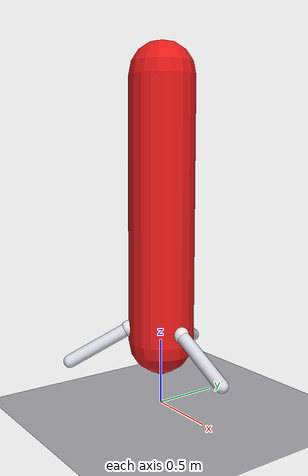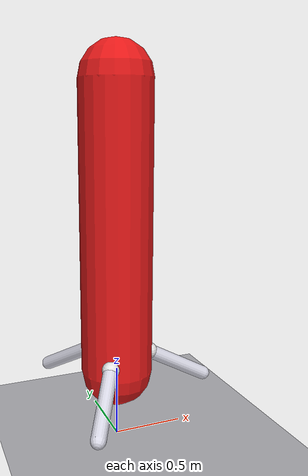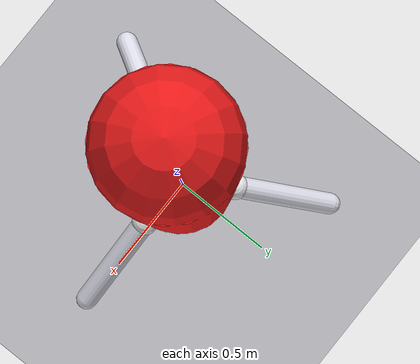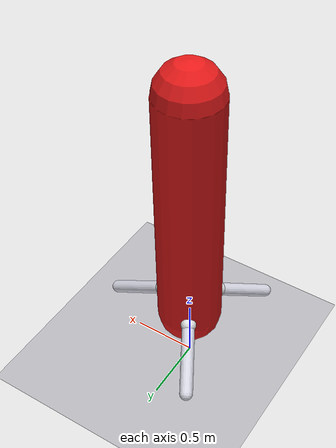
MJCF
<mujoco model="tintin_rocket">
  <compiler angle="degree" coordinate="local"/>
  <option timestep="0.002" gravity="0 0 -9.81" integrator="RK4"/>

  <visual>
    <map znear="0.001" zfar="200"/>
    <quality shadowsize="4096"/>
    <headlight ambient="0.3 0.3 0.3" diffuse="0.7 0.7 0.7"/>
  </visual>

  <default>
    <!-- General contact feel -->
    <geom friction="1.0 0.1 0.01" contype="1" conaffinity="1"/>
    <!-- Stiff & well-damped hinges for gimbal -->
    <joint limited="true" range="-90 90" damping="5.0" armature="0.0005"/>
    <!-- Visuals -->
    <site size="0.02" rgba="0.1 0.7 1 1"/>
  </default>

  <worldbody>
    <!-- Ground -->
    <geom name="ground" type="plane" size="50 50 1" pos="0 0 0" rgba="0.7 0.7 0.72 1"/>

    <!-- ===================== ROCKET BODY ===================== -->
    <!-- Main body height ~2.0 m, radius ~0.25 m; base at z=0.25 so legs touch ground -->
    <body name="rocket" pos="0 0 0.25">
      <!-- Smooth body as a vertical capsule along +Z -->
      <geom name="hull" type="capsule" fromto="0 0 0.25  0 0 2.25" size="0.25" rgba="0.9 0.1 0.1 1" density="600"/>

      <!-- ===================== LANDING LEGS (3x, fixed) ===================== -->
      <!-- Simple splayed capsules; tips are near z=0 -->
      <!-- Leg length ~0.6 m, thickness ~0.05 m, splay angle ~25 deg -->
      <!-- Leg A (0 deg) -->
      <geom name="legA_root" type="sphere" size="0.06" pos="0.25 0 0.35" rgba="0.9 0.9 0.9 1"/>
      <geom name="legA" type="capsule"
            fromto="0.25 0 0.35   0.70 0 0.10"
            size="0.05" rgba="0.85 0.85 0.9 1" density="500"/>
      <!-- Leg B (120 deg) -->
      <geom name="legB_root" type="sphere" size="0.06" pos="-0.125 0.2165 0.35" rgba="0.9 0.9 0.9 1"/>
      <geom name="legB" type="capsule"
            fromto="-0.125 0.2165 0.35   -0.35 0.6062 0.10"
            size="0.05" rgba="0.85 0.85 0.9 1" density="500"/>
      <!-- Leg C (240 deg) -->
      <geom name="legC_root" type="sphere" size="0.06" pos="-0.125 -0.2165 0.35" rgba="0.9 0.9 0.9 1"/>
      <geom name="legC" type="capsule"
            fromto="-0.125 -0.2165 0.35   -0.35 -0.6062 0.10"
            size="0.05" rgba="0.85 0.85 0.9 1" density="500"/>

      <!-- ===================== GIMBALED ENGINE ===================== -->
      <!-- Roll hinge (X), then Pitch hinge (Y); nozzle points along +Z(nozzle) -->
      <body name="gimbal_roll" pos="0 0 0.30">
        <joint name="gim_roll" type="hinge" axis="1 0 0" range="-15 15"/>

        <body name="gimbal_pitch" pos="0 0 0">
          <joint name="gim_pitch" type="hinge" axis="0 1 0" range="-15 15"/>

          <!-- Nozzle body & visuals (short capsule); +Z is thrust direction -->
          <body name="nozzle" pos="0 0 0">
            <geom name="nozzle_geom" type="capsule" fromto="0 0 0   0 0 -0.25"
                  size="0.07" rgba="0.2 0.2 0.2 1" density="300"/>
            <!-- Thrust application site at nozzle throat; +Z(nozzle) upward into rocket -->
            <site name="thrust_site" pos="0 0 0" size="0.03" rgba="0.2 0.8 1 1"/>
          </body>
        </body>
      </body>

      <!-- Convenience marker near base -->
      <site name="base_center" pos="0 0 0.25" size="0.02"/>
    </body>
  </worldbody>

  <!-- ===================== ACTUATORS ===================== -->
  <actuator>
    <!-- Gimbal position control: commands are desired angles (radians at runtime) -->
    <position name="a_gim_roll"  joint="gim_roll"  kp="2000" ctrllimited="true" ctrlrange="-15 15"/>
    <position name="a_gim_pitch" joint="gim_pitch" kp="2000" ctrllimited="true" ctrlrange="-15 15"/>

    <!-- Thruster: apply pure force along +Z of thrust_site (Newtons = control) -->
    <!-- Using a general actuator on a SITE. gear = [torque_xyz  force_xyz] in site frame.
         Here we apply NO torque and a +Z force only. -->
    <general name="thrust" site="thrust_site" biastype="affine"
             gainprm="1" gear="0 0 0  0 0 1" ctrllimited="true" ctrlrange="0 20000"/>
  </actuator>
</mujoco>
